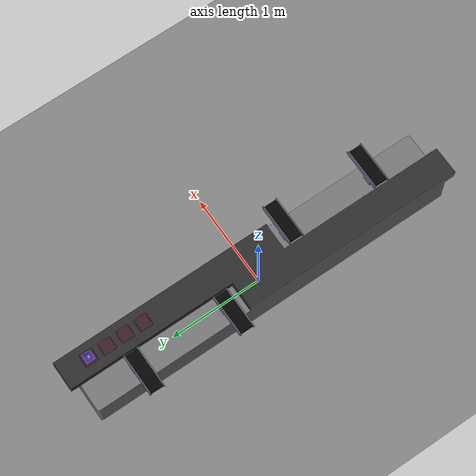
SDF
<?xml version="1.0" ?>
<!-- |    This document was autogenerated by xacro from src/nova_gazebo/worlds/my_world.sdf.xacro | -->
<!-- |    EDITING THIS FILE BY HAND IS NOT RECOMMENDED                                 | -->
<sdf version="1.7">
  <world name="empty_world">
    <!-- physics & atmosphere -->
      <physics name='2ms' type='ignored'>
      <max_step_size>0.001</max_step_size>
      <real_time_factor>1</real_time_factor>
      <real_time_update_rate>1000</real_time_update_rate>
    </physics>
    <plugin
      filename="gz-sim-physics-system"
      name="gz::sim::systems::Physics">
    </plugin>
    <plugin
      filename="gz-sim-user-commands-system"
      name="gz::sim::systems::UserCommands">
    </plugin>
    <plugin
      filename="gz-sim-scene-broadcaster-system"
      name="gz::sim::systems::SceneBroadcaster">
    </plugin>
    <plugin
      filename="gz-sim-sensors-system"
      name="gz::sim::systems::Sensors">
      <render_engine>ogre2</render_engine>
    </plugin>
    <plugin
      filename="gz-sim-imu-system"
      name="gz::sim::systems::Imu">
    </plugin>

    <spherical_coordinates>
      <surface_model>EARTH_WGS84</surface_model>
      <world_frame_orientation>ENU</world_frame_orientation>
      <latitude_deg>47.478949999999998</latitude_deg>
      <longitude_deg>19.057784999999999</longitude_deg>
      <elevation>0</elevation>
      <heading_deg>0</heading_deg>
    </spherical_coordinates>
    <gravity>0 0 -9.81</gravity>
    <!-- lighting -->
    <light name="sun" type="directional">
      <pose>0 0 10 0 0 0</pose>
      <diffuse>1 1 1 1</diffuse>
      <specular>0.1 0.1 0.1 1</specular>
      <attenuation>
        <range>1000</range>
        <constant>0.9</constant>
        <linear>0.01</linear>
        <quadratic>0.001</quadratic>
      </attenuation>
      <direction>-0.5 0.5 -1</direction>
      <cast_shadows>true</cast_shadows>
    </light>
    <!-- simple ground plane -->
    <model name="ground_plane">
      <static>true</static>
      <link name="link">
        <collision name="collision">
          <geometry>
            <plane>
              <normal>0 0 1</normal>
              <size>100 100</size>
            </plane>
          </geometry>
        </collision>
        <visual name="visual">
          <geometry>
            <plane>
              <normal>0 0 1</normal>
              <size>100 100</size>
            </plane>
          </geometry>
          <material>
            <ambient>0.5 0.5 0.5 1</ambient>
            <diffuse>0.5 0.5 0.5 1</diffuse>
          </material>
        </visual>
      </link>
    </model>
    <include>
      <name>container_l</name>
      <uri>model://container_l</uri>
      <pose>0.15 1.8 0.45999999999999996 0 0 0</pose>
      <static>False</static>
    </include>
    <!-- ======= World Definition ======= -->
    <include>
      <name>container_m</name>
      <uri>model://container_m</uri>
      <pose>0.15 1.8 0.47 0 0 0</pose>
      <static>False</static>
    </include>
    <!-- ======= World Definition ======= -->
    <include>
      <name>object</name>
      <uri>model://object</uri>
      <pose>0.15 1.8 0.48 0 0 0</pose>
      <static>False</static>
    </include>
    <!-- ======= World Definition ======= -->
    <include>
      <name>conveyor_1</name>
      <uri>model://conveyor</uri>
      <pose>-0.14 1.45 0.35 0 0 0.0</pose>
      <static>True</static>
    </include>
    <!-- ======= World Definition ======= -->
    <include>
      <name>conveyor_2</name>
      <uri>model://conveyor</uri>
      <pose>-0.14 0.45 0.35 0 0 0.0</pose>
      <static>True</static>
    </include>
    <!-- ======= World Definition ======= -->
    <include>
      <name>conveyor_3</name>
      <uri>model://conveyor</uri>
      <pose>0.14 -0.45 0.35 0 0 3.14</pose>
      <static>True</static>
    </include>
    <!-- ======= World Definition ======= -->
    <include>
      <name>conveyor_4</name>
      <uri>model://conveyor</uri>
      <pose>0.14 -1.45 0.35 0 0 3.14</pose>
      <static>True</static>
    </include>
    <!-- ======= World Definition ======= -->
    <include>
      <name>sliding_cube0</name>
      <uri>model://sliding_cube</uri>
      <pose>0.15 1.8 0.44999999999999996 0 0 0</pose>
      <static>False</static>
    </include>
    <!-- ======= World Definition ======= -->
    <include>
      <name>sliding_cube1</name>
      <uri>model://sliding_cube</uri>
      <pose>0.15 1.6 0.44999999999999996 0 0 0</pose>
      <static>False</static>
    </include>
    <!-- ======= World Definition ======= -->
    <include>
      <name>sliding_cube2</name>
      <uri>model://sliding_cube</uri>
      <pose>0.15 1.4 0.44999999999999996 0 0 0</pose>
      <static>False</static>
    </include>
    <!-- ======= World Definition ======= -->
    <include>
      <name>sliding_cube3</name>
      <uri>model://sliding_cube</uri>
      <pose>0.15 1.2 0.44999999999999996 0 0 0</pose>
      <static>False</static>
    </include>
    <!-- ======= World Definition ======= -->
    <include>
      <name>platform</name>
      <uri>model://platform</uri>
      <pose>0 -0.0 0.45 0 0 0</pose>
      <static>True</static>
    </include>
    <!-- ======= World Definition ======= -->
  </world>
</sdf>

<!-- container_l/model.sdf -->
<sdf version="1.6">
  <model name="container_l">
    <static>false</static>

    <link name="link_container_l">
      <inertial>
        <mass>0.185</mass>
        <pose>0 0 0.011014 0 0 0</pose>
        <inertia>
          <ixx>2.24613e-4</ixx>
          <iyy>2.24613e-4</iyy>
          <izz>4.23503e-4</izz>
          <ixy>0</ixy>
          <ixz>0</ixz>
          <iyz>0</iyz>
        </inertia>
      </inertial>

      <collision name="collision">
        <geometry>
          <mesh>
            <uri>model://container_l/meshes/container_l.dae</uri>
          </mesh>
        </geometry>
      </collision>

      <visual name="visual">
        <geometry>
          <mesh>
            <uri>model://container_l/meshes/container_l.dae</uri>
          </mesh>
        </geometry>
      </visual>
    </link>
  </model>
</sdf>

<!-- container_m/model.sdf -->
<sdf version="1.6">
  <model name="container_m">
    <pose>0 0 1 0 0 0</pose>
    <static>false</static>

    <link name="link_container_m">
      <inertial>
        <mass>0.059</mass>
        <pose>0 0 0.006419 0 0 0</pose>
        <inertia>
          <ixx>2.6257e-5</ixx>
          <iyy>2.6257e-5</iyy>
          <izz>5.0783e-5</izz>
          <ixy>0.0</ixy>
          <ixz>0.0</ixz>
          <iyz>0.0</iyz>
        </inertia>
      </inertial>

      <!-- 注意尺寸单位已改为米 -->
      <collision name="collision">
        <geometry>
          <mesh>
            <uri>model://container_m/meshes/container_m.dae</uri>
          </mesh>
        </geometry>
      </collision>

      <visual name="visual">
        <geometry>
          <mesh>
            <uri>model://container_m/meshes/container_m.dae</uri>
          </mesh>
        </geometry>
      </visual>
    </link>
  </model>
</sdf>

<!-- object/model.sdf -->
<sdf version="1.6">
  <model name="object">
    <pose>0 0 1 0 0 0</pose>
    <static>false</static>

    <link name="link_object">
      <inertial>
        <mass>0.01</mass>
        <pose>0 0 0.006127 0 0 0</pose>
        <inertia>
          <ixx>7.95e-7</ixx>
          <iyy>7.95e-7</iyy>
          <izz>1.303e-6</izz>
          <ixy>0</ixy><ixz>0</ixz><iyz>0</iyz>
        </inertia>
      </inertial>

      <collision name="collision">
        <geometry>
          <mesh>
            <uri>model://object/meshes/object.dae</uri>
          </mesh>
        </geometry>
      </collision>

      <visual name="visual">
        <geometry>
          <mesh>
            <uri>model://object/meshes/object.dae</uri>
          </mesh>
        </geometry>
      </visual>
    </link>
  </model>
</sdf>

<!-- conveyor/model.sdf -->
<sdf version="1.6">
  <model name="conveyor">
    <static>true</static>
    <link name="link">
    <collision name="collision">
        <geometry>
          <mesh>
            <uri>model://conveyor/meshes/conveyor.dae</uri>
          </mesh>
        </geometry>
      </collision>
      <visual name="visual">
        <geometry>
          <mesh>
            <uri>model://conveyor/meshes/conveyor.dae</uri>
          </mesh>
        </geometry>
      </visual>
    </link>
  </model>
</sdf>

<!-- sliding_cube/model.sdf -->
<sdf version="1.6" xmlns:xacro="http://ros.org/wiki/xacro">

  <!-- 定义一个变量 name，默认值为 sliding_cube -->
  <xacro:property name="name" value="sliding_cube"/>

  <model name="${name}">
    <pose>0 0 0 0 0 0</pose>
    <static>false</static>

    <!-- 负载方块本体 -->
    <link name="link">
      <inertial>
        <mass>0.329</mass>
        <pose>0 0 0.009172 0 0 0</pose>
        <inertia>
          <ixx>5.7268e-4</ixx>
          <iyy>5.6166e-4</iyy>
          <izz>1.1076e-3</izz>
          <ixy>0</ixy><ixz>0</ixz><iyz>0</iyz>
        </inertia>
      </inertial>

      <collision name="collision">
        <geometry>
          <mesh>
            <uri>model://sliding_cube/meshes/sliding_cube.dae</uri>
          </mesh>
        </geometry>
      </collision>

      <visual name="visual">
        <geometry>
          <mesh>
            <uri>model://sliding_cube/meshes/sliding_cube.dae</uri>
          </mesh>
        </geometry>
      </visual>
    </link>

    <!-- 用 xacro 变量拼 topic -->
    <plugin
      filename="gz-sim-velocity-control-system"
      name="gz::sim::systems::VelocityControl">
      <initial_linear>0 0 0</initial_linear>
      <initial_angular>0 0 0</initial_angular>
    </plugin>
      <plugin
        filename="gz-sim-pose-publisher-system"
        name="gz::sim::systems::PosePublisher">
        <publish_link_pose>false</publish_link_pose>
        <publish_collision_pose>false</publish_collision_pose>
        <publish_visual_pose>false</publish_visual_pose>
        <publish_nested_model_pose>true</publish_nested_model_pose>
      </plugin>
  </model>
</sdf>

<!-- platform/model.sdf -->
<sdf version="1.6">
  <model name="platform">
    <pose>0 0 1 0 0 0</pose>
    <static>true</static>
    <link name="link">
      <collision name="collision">
        <geometry>
          <mesh>
            <uri>model://platform/meshes/platform.dae</uri>
          </mesh>
        </geometry>
      </collision>

      <visual name="visual">
        <geometry>
          <mesh>
            <uri>model://platform/meshes/platform.dae</uri>
          </mesh>
        </geometry>
      </visual>
    </link>
  </model>
</sdf>
